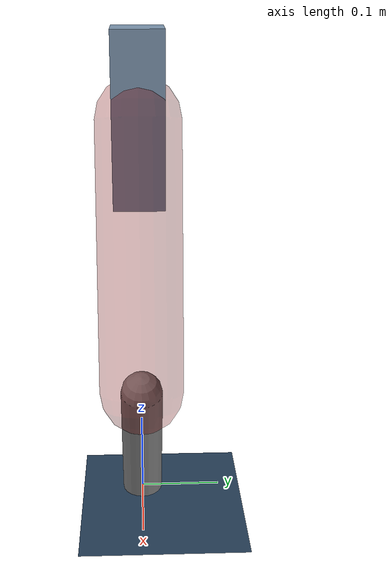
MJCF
<mujoco model="Hopper2D">
	<compiler inertiafromgeom="true" angle="radian" />
	<option timestep="0.001" integrator="implicit" cone="elliptic" solver="Newton" tolerance="1e-10" />

	<default>
		<geom contype="1" conaffinity="1" condim="3" friction="2 0.005 0.0001" solref="0.005 1" />
		<joint limited="true" damping="0.1" />
	</default>

	<asset>
		<texture name="skybox" type="skybox" builtin="gradient" rgb1=".4 .6 .8" rgb2="0 0 0" width="800" height="800" />
		<texture name="grid" type="2d" builtin="checker" rgb1=".1 .2 .3" rgb2=".2 .3 .4" width="300" height="300" mark="edge" markrgb=".2 .3 .4" />
		<material name="ground" texture="grid" texrepeat="1 1" texuniform="true" reflectance="0.1" />
		<material name="leg" rgba="0.5 0.6 0.7 1" />
	</asset>

	<worldbody>

		<geom name="floor" type="plane" size="5 5 0.25" material="ground" />

		<light directional="false" diffuse="0.8 0.8 0.8" specular="0.3 0.3 0.3" pos="0 0 2" dir="0 0 -1" />
		<light mode="targetbodycom" target="base" directional="false" diffuse="0.8 0.8 0.8" specular="0.3 0.3 0.3" pos="0 0 2" dir="0 0 -1" />

		<camera name="fixed" pos="0 -2 1" xyaxes="1 0 0 0 0 1" />
		<camera name="tracking" mode="trackcom" pos="0 -3 1" />

		<body name="root" pos="0 0 0.4843935683861139">
			<joint name="slide_x" type="slide" axis="1 0 0" range="-100 100" />
			<joint name="slide_z" type="slide" axis="0 0 1" range="0 10" />

			<body name="base" pos="0 0 0">
				<geom name="torso" type="box" size="0.03 0.03 0.1" mass="2.066" material="leg" />

				<body name="link1" pos="0 0 0" euler="0 1.3470136070695888 0">
					<joint type="hinge" axis="0 -1 0" pos="0 0 0" name="hinge1" limited="true" range="-3.14 3.14" stiffness="0" damping="0.1" />
					<geom name="thigh" type="capsule" fromto="0 0 0 0.317950803087256 0 0" size="0.05" rgba="0.5 0 0 0.3" mass="1.0376622486443168" />

					<body name="link2" pos="0.317950803087256 0 0" euler="0 0.6082929482507328 0">
						<joint type="hinge" axis="0 -1 0" pos="0 0 0" name="hinge2" limited="true" range="-3.14 3.14" stiffness="0" damping="0.1" />
						<geom name="shank" type="capsule" fromto="0 0 0 0.1881059502552655 0 0" size="0.025" mass="0.39079535522973896" />

					</body>
				</body>
			</body>
		</body>
	</worldbody>

	<actuator>
		<motor name="torque1" joint="hinge1" ctrlrange="-27.030789828337692 27.030789828337692" ctrllimited="true" gear="1" />
		<motor name="torque2" joint="hinge2" ctrlrange="-47.47547667135287 47.47547667135287" ctrllimited="true" gear="1" />
	</actuator>
</mujoco>
